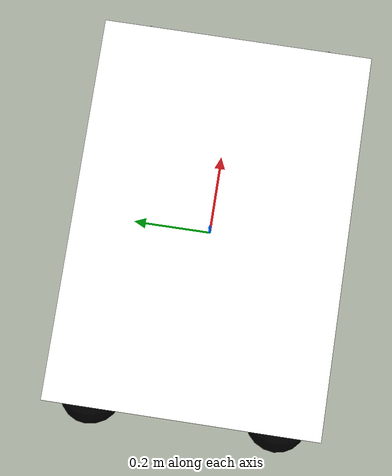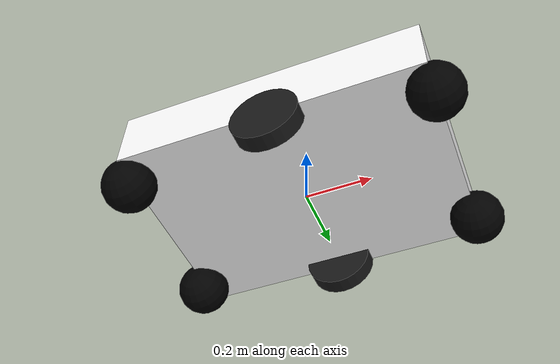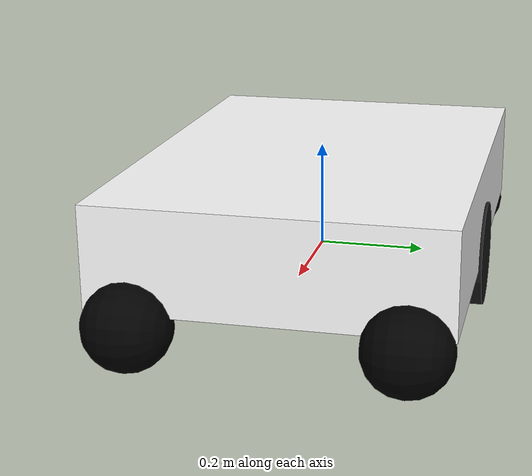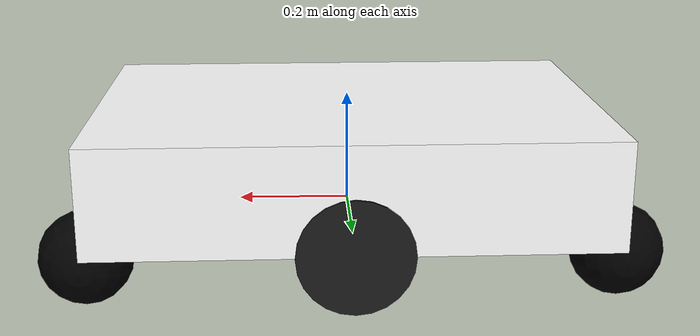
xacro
<?xml version='1.0'?>
<robot xmlns:xacro='http://www.ros.org/wiki/xacro' name ="my_bot" >

    <!-- XACRO CONSTANTS  -->
    <xacro:property name="chassis_length" value="0.9"/>
    <xacro:property name="chassis_width" value="0.64"/>
    <xacro:property name="chassis_height" value="0.19"/>
    <xacro:property name="chassis_mass" value="70"/>

    <xacro:property name="traction_wheel_mass" value="1"/>
    <xacro:property name="traction_wheel_base" value="0.88"/>
    <xacro:property name="traction_max_wheel_torque" value="20000"/>
    <xacro:property name="traction_wheel_friction" value="5.0"/>
    <xacro:property name="trolley_wheel_width" value="0.05"/>

    <xacro:property name="trolley_wheel_mass" value="0.1"/>
    <xacro:property name="trolley_track_width" value="0.84"/>
    <xacro:property name="trolley_wheel_friction" value="0.0"/>
    <xacro:property name="trolley_wheel_radius" value="0.08"/>
    <!-- a small constant -->
    <xacro:property name="eps" value="0.002"/>

    <xacro:property name="traction_wheel_radius" value="0.1"/>
    <xacro:property name="traction_wheel_width" value="0.05"/>
    <xacro:property name="traction_track_width" value="0.6"/>

    <xacro:property name="two_d_lidar_update_rate" value="30"/>
    <xacro:property name="two_d_lidar_sample_size" value="361"/>
    <xacro:property name="two_d_lidar_min_angle" value="0"/>
    <xacro:property name="two_d_lidar_max_angle" value="360"/>
    <xacro:property name="two_d_lidar_min_range" value="0.55"/>
    <xacro:property name="two_d_lidar_max_range" value="16"/>

    <xacro:property name="camera_baseline" value="0.06"/>
    <xacro:property name="camera_height" value="0.10"/>
    <xacro:property name="camera_horizontal_fov" value="60"/>

    <xacro:arg name="robot_namespace" default=""/>
    <xacro:arg name="wheel_odom_topic" default="odom" />
    <xacro:arg name="camera_enabled" default="false" />
    <xacro:arg name="stereo_camera_enabled" default="false" />
    <xacro:arg name="two_d_lidar_enabled" default="false" />
    <xacro:arg name="publish_wheel_odom_tf" default="true" />
    <xacro:arg name="conveyor_enabled" default="false"/>
    <xacro:arg name="ground_truth_frame" default="map"/>
    <xacro:arg name="sim_gazebo" default="false" />
    <xacro:arg name="sim_gz" default="false" />
    <xacro:arg name="odometry_source" default="world" />

    <xacro:property name="odometry_source" value="$(arg odometry_source)"/>

    <!-- LOAD MACROS -->

    <xacro:include filename="macros.xacro"/>

    <xacro:include filename="gz.xacro"/>

    <!-- BASE LINK-->

    <link name="base_footprint"/>

    <link name="base_link"/>

    <joint name="base_footprint_joint" type="fixed">
        <parent link="base_footprint"/>
        <child link="base_link"/>
        <origin xyz="0 0 0" rpy="0 0 0"/>
    </joint>

    <!-- CHASSIS LINK -->

    <joint name="chassis_joint" type="fixed">
        <parent link="base_link"/>
        <child link="chassis"/>
        <origin xyz="-0.45 0 0" rpy="0 0 0.0"/>
    </joint>

    <link name="chassis">
        <visual>
            <origin xyz="${chassis_length/2} 0 ${chassis_height/2}" />
            <geometry>
                <box size="${chassis_length} ${chassis_width} ${chassis_height}"/>
            </geometry>
            <material name="white">
                <color rgba="1.0 1.0 1.0 1.0"/>
            </material>
        </visual>
        <collision>
            <origin xyz="${chassis_length/2} 0 ${chassis_height/2}" />
            <geometry>
                <box size="${chassis_length} ${chassis_width} ${chassis_height}"/>
            </geometry>
        </collision>
        <xacro:box_inertia mass="${chassis_mass}" x="${chassis_length}" y="${chassis_width}" z = "${chassis_height}">
            <origin xyz="${chassis_length/2} 0 ${chassis_height/2}" rpy="0 0 0"/>
        </xacro:box_inertia>
    </link>

    <joint name="middle_wheel_left_joint" type="continuous">
        <parent link="base_link"/>
        <child link="middle_wheel_left_visual"/>
        <origin xyz="0 ${traction_track_width/2} 0" rpy="0 0 0"/>
        <axis xyz="0 1 0" rpy="0 0 0" />
    </joint>

    <link name="middle_wheel_left_visual">
        <visual>
             <origin xyz="0 0 0" rpy="0 ${pi/2} ${pi/2}" />

            <geometry>
                <cylinder radius="${traction_wheel_radius}" length="${traction_wheel_width}"/>
            </geometry>
            <self_collide>false</self_collide>
            <material name="plastic">
                <color rgba="0.1 0.1 0.1 1"/>
            </material>
        </visual>
        <collision>
             <origin xyz="0 0 0" rpy="0 ${pi/2} ${pi/2}" />
            <geometry>
                <cylinder radius="${traction_wheel_radius}" length="${traction_wheel_width}"/>
            </geometry>
            <self_collide>false</self_collide>
        </collision>
        <xacro:inertial_cylinder mass="${traction_wheel_mass}" length="${traction_wheel_width}" radius="${traction_wheel_radius}">
             <origin xyz="0 0 0" rpy="0 ${pi/2} ${pi/2}" />
        </xacro:inertial_cylinder>
        <mu>5.0</mu>

    </link>

    <joint name="middle_wheel_right_joint" type="continuous">
        <parent link="base_link"/>
        <child link="middle_wheel_right_visual"/>
        <origin xyz="0 -${traction_track_width/2} 0" rpy="0 0 0"/>
        <axis xyz="0 1 0" rpy="0 0 0" />
    </joint>
    <link name="middle_wheel_right_visual">
        <visual>
             <origin xyz="0 0 0" rpy="0 ${pi/2} ${pi/2}" />
            <geometry>
                <cylinder radius="${traction_wheel_radius}" length="${traction_wheel_width}"/>
            </geometry>
            <material name="plastic">
                <color rgba="0.1 0.1 0.1 1"/>
            </material>
            <self_collide>false</self_collide>
        </visual>
        <collision>
             <origin xyz="0 0 0" rpy="0 ${pi/2} ${pi/2}" />
            <geometry>
                <cylinder radius="${traction_wheel_radius}" length="${traction_wheel_width}"/>
            </geometry>
            <self_collide>false</self_collide>
        </collision>
        <xacro:inertial_cylinder mass="${traction_wheel_mass}" length="${traction_wheel_width}" radius="${traction_wheel_radius}">
            <origin xyz="0 0 0" rpy="0 ${pi/2} ${pi/2}" />
        </xacro:inertial_cylinder>
        <mu>5.0</mu>

        <gazebo>
            <plugin filename="ignition-gazebo-joint-state-publisher-system" name="ignition::gazebo::systems::JointStatePublisher">
                <topic>/joint_states</topic>
                <joint_name>Middle_wheel_right_joint</joint_name>
            </plugin>
        </gazebo>
    </link>

    <transmission name="middle_wheel_left_trans">
    <type>transmission_interface/SimpleTransmission</type>
    <joint name="middle_wheel_left_joint">
        <hardwareInterface>hardware_interface/VelocityJointInterface</hardwareInterface>
    </joint>
    <actuator name="middle_wheel_left_motor">
        <mechanicalReduction>1</mechanicalReduction>
    </actuator>
    </transmission>

    <transmission name="middle_wheel_right_trans">
    <type>transmission_interface/SimpleTransmission</type>
    <joint name="middle_wheel_right_joint">
        <hardwareInterface>hardware_interface/VelocityJointInterface</hardwareInterface>
    </joint>
    <actuator name="middle_wheel_right_motor">
        <mechanicalReduction>1</mechanicalReduction>
    </actuator>
    </transmission>

    <!-- CASTER WHEELS -->

    <!-- Front Left Caster Wheel -->
    <joint name="front_left_caster_joint" type="fixed">
        <parent link="base_link"/>
        <child link="front_left_caster_visual"/>
        <origin xyz="${chassis_length/2} 0.240 -0.02"/>
        <axis xyz="0 1 0" rpy="0 0 0" />
    </joint>
    <link name="front_left_caster_visual">

        <visual>
            <origin xyz="0 0 0" rpy="0 ${pi/2} ${pi/2}"/>
            <geometry>
                <sphere radius="${trolley_wheel_radius}"/>
            </geometry>
            <material name="black">
                <color rgba="0.0 0.0 0.0 1.0"/>
            </material>
        </visual>
        <collision>
            <origin xyz="0 0 0" rpy="0 ${pi/2} ${pi/2}"/>
            <geometry>
                <sphere radius="${trolley_wheel_radius}"/>
            </geometry>
        </collision>
        <xacro:inertial_sphere mass="${trolley_wheel_mass}" radius="${trolley_wheel_radius}">
            <origin xyz="0 0 0" rpy="0 0 0"/>
        </xacro:inertial_sphere>
         <mu>0.0</mu>
    </link>

    <!-- Front Right Caster Wheel -->
    <joint name="front_right_caster_joint" type="fixed">
        <parent link="base_link"/>
        <child link="front_right_caster_visual"/>
        <origin xyz="${chassis_length/2} -0.240 -0.02"/>
        <axis xyz="0 1 0" rpy="0 0 0" />
    </joint>
    <link name="front_right_caster_visual">
        <visual>
            <origin xyz="0 0 0" rpy="0 ${pi/2} ${pi/2}"/>
            <geometry>
                <sphere radius="${trolley_wheel_radius}"/>
            </geometry>
            <material name="black">
                <color rgba="0.0 0.0 0.0 1.0"/>
            </material>
        </visual>
        <collision>
            <origin xyz="0 0 0" rpy="0 0 0"/>
            <geometry>
                    <sphere radius="${trolley_wheel_radius}"/>
            </geometry>
        </collision>
        <xacro:inertial_sphere mass="${trolley_wheel_mass}" radius="${trolley_wheel_radius}">
            <origin xyz="0 0 0" rpy="0 0 0"/>
        </xacro:inertial_sphere>
        <mu>0.0</mu>
    </link>

        <!-- back Left Caster Wheel -->
    <joint name="back_left_caster_joint" type="fixed">
        <parent link="base_link"/>
        <child link="back_left_caster_visual"/>
        <origin xyz="-${chassis_length/2} 0.240 -0.02"/>
        <axis xyz="0 1 0" rpy="0 0 0" />
    </joint>
    <link name="back_left_caster_visual">

        <visual>
            <origin xyz="0 0 0" rpy="0 ${pi/2} ${pi/2}"/>
            <geometry>
                <sphere radius="${trolley_wheel_radius}"/>
            </geometry>
            <material name="black">
                <color rgba="0.0 0.0 0.0 1.0"/>
            </material>
        </visual>
        <collision>
            <origin xyz="0 0 0" rpy="0 0 0"/>
            <geometry>
                <sphere radius="${trolley_wheel_radius}"/>
            </geometry>
        </collision>
        <xacro:inertial_sphere mass="${trolley_wheel_mass}" radius="${trolley_wheel_radius}">
            <origin xyz="0 0 0" rpy="0 0 0"/>
        </xacro:inertial_sphere>
         <mu>0.0</mu>

    </link>

    <!-- back Right Caster Wheel -->
    <joint name="back_right_caster_joint" type="fixed">
        <parent link="base_link"/>
        <child link="back_right_caster_visual"/>
        <origin xyz="-${chassis_length/2} -0.240 -0.02"/>
        <axis xyz="0 1 0" rpy="0 0 0" />
    </joint>
    <link name="back_right_caster_visual">

        <visual>
            <origin xyz="0 0 0" rpy="0 ${pi/2} ${pi/2}"/>
            <geometry>
                <sphere radius="${trolley_wheel_radius}"/>
            </geometry>
            <material name="black">
                <color rgba="0.0 0.0 0.0 1.0"/>
            </material>
        </visual>
        <collision>
            <origin xyz="0 0 0" rpy="0 0 0"/>
            <geometry>
                    <sphere radius="${trolley_wheel_radius}"/>
            </geometry>
        </collision>
        <xacro:inertial_sphere mass="${trolley_wheel_mass}" radius="${trolley_wheel_radius}">
            <origin xyz="0 0 0" rpy="0 0 0"/>
        </xacro:inertial_sphere>
         <mu>0.0</mu>

    </link>

    <link name="two_d_lidar">
            <collision>
                <origin xyz="0 0 0" rpy="0 0 0" />
                <geometry>
                    <cylinder length="0.06" radius="0.075"/>
                </geometry>
            </collision>

            <visual>
                <origin xyz="0 0 0" rpy="0 0 0" />
                <geometry>
                    <cylinder length="0.06" radius="0.075"/>
                </geometry>
             <material name="black">
                <color rgba="0.0 0.0 0.0 1.0"/>
            </material>
            </visual>
            <xacro:inertial_cylinder mass="0.1" length="0.06" radius="0.075">
                <origin xyz="0 0 0" rpy="0 0 0" />
            </xacro:inertial_cylinder>

    </link>

    <joint name="two_d_lidar_joint" type="fixed">
            <parent link="base_link"/>
            <child link="two_d_lidar"/>
            <origin xyz="0.0 0 0.08" rpy="0 0 0" />
    </joint>

        <gazebo reference="two_d_lidar">
            <material>Gazebo/White</material>
        </gazebo>

    <link name="imu_frame"/>

    <joint name="imu_joint" type="fixed">
        <parent link="base_link"/>
        <child link="imu_frame"/>
        <origin xyz="0.0 0.0 0.08" rpy="0.0 0.0 0.0"/>
    </joint>

</robot>

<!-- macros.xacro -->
<robot xmlns:xacro="http://www.ros.org/wiki/xacro">

    <!--................................ INERTIA MATRICES .............................. -->

    <xacro:macro name="box_inertia" params="mass x y z *origin">
        <inertial>
            <xacro:insert_block name="origin"/>
            <mass value="${mass}" />
            <inertia ixx="${(1/12) * mass * (y*y+z*z)}" ixy="0.0" ixz="0.0"
                    iyy="${(1/12) * mass * (x*x+z*z)}" iyz="0.0"
                    izz="${(1/12) * mass * (x*x+y*y)}" />
        </inertial>
    </xacro:macro>

    <xacro:macro name="inertial_sphere" params="mass radius *origin">
        <inertial>
            <xacro:insert_block name="origin"/>
            <mass value="${mass}" />
            <inertia ixx="${(2/5) * mass * (radius*radius)}" ixy="0.0" ixz="0.0"
                    iyy="${(2/5) * mass * (radius*radius)}" iyz="0.0"
                    izz="${(2/5) * mass * (radius*radius)}" />
        </inertial>
    </xacro:macro>

    <xacro:macro name="inertial_cylinder" params="mass length radius *origin">
        <inertial>
            <xacro:insert_block name="origin"/>
            <mass value="${mass}" />
            <inertia ixx="${(1/12) * mass * (3*radius*radius + length*length)}" ixy="0.0" ixz="0.0"
                    iyy="${(1/12) * mass * (3*radius*radius + length*length)}" iyz="0.0"
                    izz="${(1/2) * mass * (radius*radius)}" />
        </inertial>
    </xacro:macro>

    <!-- ............................... TROLLEY WHEEL DEFINITION .............................. -->

    <xacro:macro name="trolley_wheel" params="cardinality dexterity origin_x origin_y origin_z">
        <link name="${cardinality}_${dexterity}_wheel">
            <collision>
                <origin xyz="0 0 0" rpy="0 ${pi/2} ${pi/2}" />
                <geometry>
                    <sphere radius="${trolley_wheel_radius}"/>
                </geometry>
            </collision>

            <inertial>
                <origin xyz="0 0 0" rpy="0 0 0" />
                <mass value="${trolley_wheel_mass}"/>
                <xacro:sphere_inertia m="${trolley_wheel_mass}" r="${trolley_wheel_radius}"/>
            </inertial>

            <mu>0.0</mu>
        </link>

        <joint name="${cardinality}_${dexterity}_wheel_joint" type="fixed">
            <parent link="base_link"/>
            <child link="${cardinality}_${dexterity}_wheel"/>
            <origin xyz="${origin_x} ${origin_y} ${origin_z}" rpy="0 0 0" />
            <axis xyz="0 1 0" rpy="0 0 0" />
        </joint>

        <gazebo reference="${cardinality}_${dexterity}_wheel">
            <material>Gazebo/Black</material>
        </gazebo>
    </xacro:macro>

    <xacro:macro name="traction_wheel" params="cardinality dexterity origin_x origin_y origin_z">
        <link name="${cardinality}_${dexterity}_wheel">
            <collision>
                <origin xyz="0 0 0" rpy="0 ${pi/2} ${pi/2}" />
                <geometry>
                    <cylinder length="${traction_wheel_width}" radius="${traction_wheel_radius}"/>
                </geometry>
                <self_collide>false</self_collide>
            </collision>

            <inertial>
                <origin xyz="0 0 0" rpy="0 ${pi/2} ${pi/2}" />
                <mass value="${traction_wheel_mass}"/>
                <xacro:cylinder_inertia m="${traction_wheel_mass}" r="${traction_wheel_radius}" h="${traction_wheel_width}"/>
            </inertial>

            <mu>5.0</mu>
        </link>

        <joint name="${cardinality}_${dexterity}_wheel_joint" type="continuous">
            <parent link="base_link"/>
            <child link="${cardinality}_${dexterity}_wheel"/>
            <origin xyz="${origin_x} ${origin_y} ${origin_z}" rpy="0 0 0" />
            <axis xyz="0 1 0" rpy="0 0 0" />
        </joint>

        <gazebo reference="${cardinality}_${dexterity}_wheel">
            <material>Gazebo/Black</material>
        </gazebo>
    </xacro:macro>

</robot>
